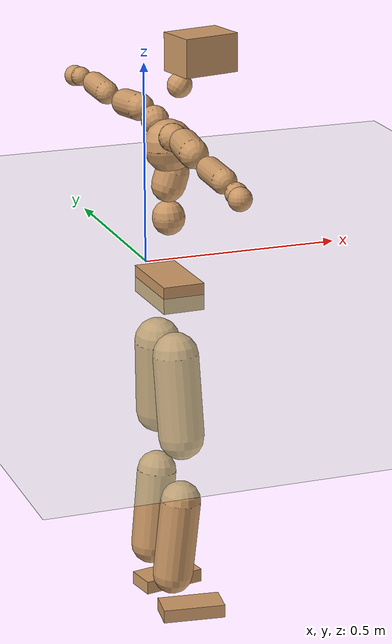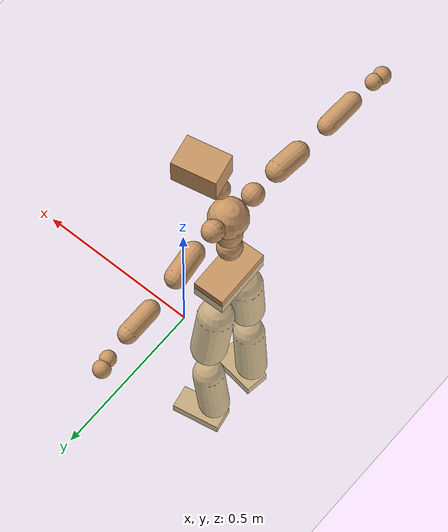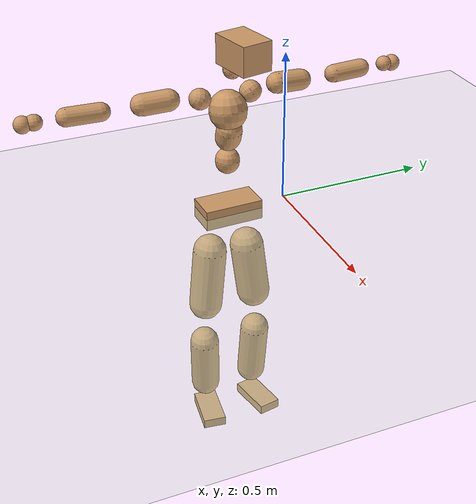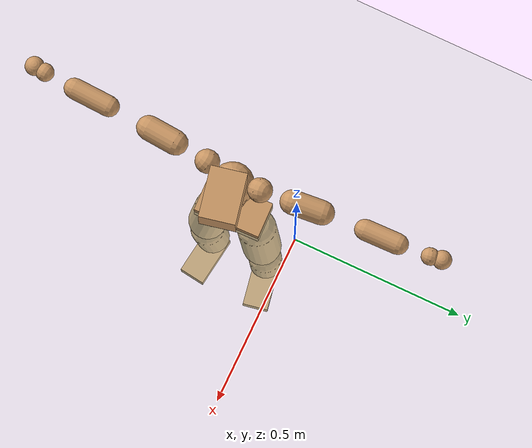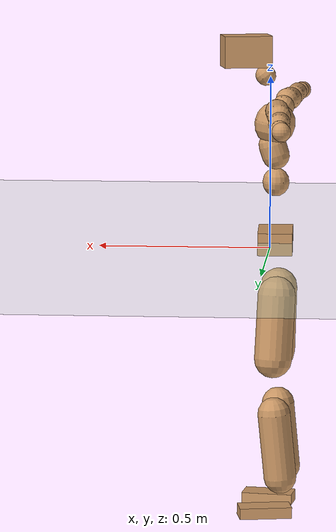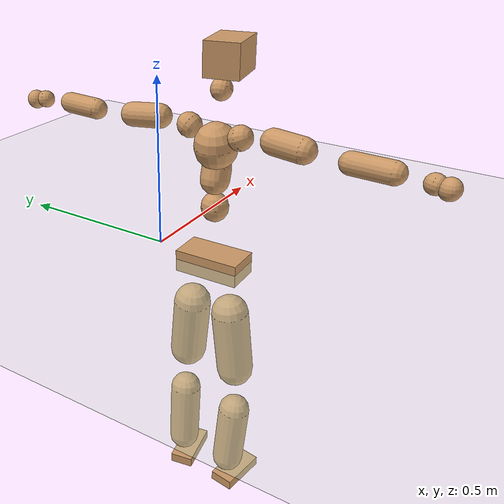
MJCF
<mujoco model="humanoid">
  <compiler coordinate="local" angle="radian"/>
  <default>
    <joint damping="0.0" armature="0.01" stiffness="0.0" limited="true"/>
    <geom conaffinity="1" condim="3" contype="7" margin="0.001" rgba="0.8 0.6 .4 1"/>
  </default>
  <asset>
    <texture type="skybox" builtin="gradient" rgb1=".4 .5 .6" rgb2="0 0 0" width="100" height="100"/>
    <texture builtin="flat" height="1278" mark="cross" markrgb="1 1 1" name="texgeom" random="0.01" rgb1="0.8 0.6 0.4" rgb2="0.8 0.6 0.4" type="cube" width="127"/>
    <texture builtin="checker" height="100" name="texplane" rgb1="0 0 0" rgb2="0.8 0.8 0.8" type="2d" width="100"/>
    <material name="MatPlane" reflectance="0.5" shininess="1" specular="1" texrepeat="60 60" texture="texplane"/>
    <material name="geom" texture="texgeom" texuniform="true"/>
  </asset>
  <worldbody>
    <light cutoff="100" diffuse="1 1 1" dir="-0 0 -1.3" directional="true" exponent="1" pos="0 0 1.3" specular=".1 .1 .1"/>
    <geom conaffinity="1" condim="3" name="floor" pos="0 0 0" rgba="0.8 0.9 0.8 1" size="100 100 .2" type="plane" material="MatPlane"/>
    <body name="Pelvis" pos="0.0003 -0.1916 0.0043">
      <freejoint name="Pelvis"/>
      <geom type="box" contype="1" conaffinity="1" density="5359.374825" pos="-0.0070 -0.0002 -0.0111" size="0.0513 0.0973 0.0329" quat="0.9999 0.0000 0.0000 0.0149" name="Pelvis"/>
      <body name="L_Hip" pos="-0.0185 0.0577 -0.0809">
        <joint name="L_Hip_x" type="hinge" pos="0 0 0" axis="1 0 0" stiffness="1600" damping="160" armature="0.02" range="-180.0000 180.0000"/>
        <joint name="L_Hip_y" type="hinge" pos="0 0 0" axis="0 1 0" stiffness="1600" damping="160" armature="0.02" range="-180.0000 180.0000"/>
        <joint name="L_Hip_z" type="hinge" pos="0 0 0" axis="0 0 1" stiffness="1600" damping="160" armature="0.02" range="-180.0000 180.0000"/>
        <geom type="capsule" contype="1" conaffinity="1" density="2040.816327" size="0.0562" fromto="0.0039 0.0096 -0.0856 0.0127 0.0310 -0.2751" name="L_Hip"/>
        <body name="L_Knee" pos="0.0166 0.0406 -0.3607">
          <joint name="L_Knee_x" type="hinge" pos="0 0 0" axis="1 0 0" stiffness="1600" damping="160" armature="0.02" range="-180.0000 180.0000"/>
          <joint name="L_Knee_y" type="hinge" pos="0 0 0" axis="0 1 0" stiffness="1600" damping="160" armature="0.02" range="-180.0000 180.0000"/>
          <joint name="L_Knee_z" type="hinge" pos="0 0 0" axis="0 0 1" stiffness="1600" damping="160" armature="0.02" range="-180.0000 180.0000"/>
          <geom type="capsule" contype="1" conaffinity="1" density="1234.567901" size="0.0488" fromto="-0.0077 -0.0021 -0.0784 -0.0269 -0.0072 -0.2736" name="L_Knee"/>
          <body name="L_Ankle" pos="-0.0346 -0.0093 -0.352">
            <joint name="L_Ankle_x" type="hinge" pos="0 0 0" axis="1 0 0" stiffness="1600" damping="160" armature="0.02" range="-180.0000 180.0000"/>
            <joint name="L_Ankle_y" type="hinge" pos="0 0 0" axis="0 1 0" stiffness="1600" damping="160" armature="0.02" range="-180.0000 180.0000"/>
            <joint name="L_Ankle_z" type="hinge" pos="0 0 0" axis="0 0 1" stiffness="1600" damping="160" armature="0.02" range="-180.0000 180.0000"/>
            <geom type="box" contype="1" conaffinity="1" density="1000.000028" pos="0.0539 0.0099 -0.0237" size="0.0781 0.0378 0.0165" quat="0.9959 0.0000 0.0000 0.0909" name="L_Ankle"/>
            <body name="L_Toe" pos="0.1079 0.0199 -0.0475">
              <joint name="L_Toe_x" type="hinge" pos="0 0 0" axis="1 0 0" stiffness="1000" damping="100" armature="0.02" range="-180.0000 180.0000"/>
              <joint name="L_Toe_y" type="hinge" pos="0 0 0" axis="0 1 0" stiffness="1000" damping="100" armature="0.02" range="-180.0000 180.0000"/>
              <joint name="L_Toe_z" type="hinge" pos="0 0 0" axis="0 0 1" stiffness="1000" damping="100" armature="0.02" range="-180.0000 180.0000"/>
              <geom type="box" contype="1" conaffinity="1" density="9360069.349628" pos="0.0000 0.0000 0.0263" size="0.0007 0.0019 0.001" quat="0.9952 0.0000 0.0000 0.0981" name="L_Toe"/>
            </body>
          </body>
        </body>
      </body>
      <body name="R_Hip" pos="-0.0173 -0.0556 -0.0768">
        <joint name="R_Hip_x" type="hinge" pos="0 0 0" axis="1 0 0" stiffness="1600" damping="160" armature="0.02" range="-180.0000 180.0000"/>
        <joint name="R_Hip_y" type="hinge" pos="0 0 0" axis="0 1 0" stiffness="1600" damping="160" armature="0.02" range="-180.0000 180.0000"/>
        <joint name="R_Hip_z" type="hinge" pos="0 0 0" axis="0 0 1" stiffness="1600" damping="160" armature="0.02" range="-180.0000 180.0000"/>
        <geom type="capsule" contype="1" conaffinity="1" density="2040.816327" size="0.0556" fromto="0.0026 -0.0091 -0.0851 0.0089 -0.0307 -0.2878" name="R_Hip"/>
        <body name="R_Knee" pos="0.0116 -0.0398 -0.3728">
          <joint name="R_Knee_x" type="hinge" pos="0 0 0" axis="1 0 0" stiffness="1600" damping="160" armature="0.02" range="-180.0000 180.0000"/>
          <joint name="R_Knee_y" type="hinge" pos="0 0 0" axis="0 1 0" stiffness="1600" damping="160" armature="0.02" range="-180.0000 180.0000"/>
          <joint name="R_Knee_z" type="hinge" pos="0 0 0" axis="0 0 1" stiffness="1600" damping="160" armature="0.02" range="-180.0000 180.0000"/>
          <geom type="capsule" contype="1" conaffinity="1" density="1234.567901" size="0.0493" fromto="-0.0077 0.0029 -0.0789 -0.0265 0.0101 -0.2723" name="R_Knee"/>
          <body name="R_Ankle" pos="-0.0342 0.013 -0.3512">
            <joint name="R_Ankle_x" type="hinge" pos="0 0 0" axis="1 0 0" stiffness="1600" damping="160" armature="0.02" range="-180.0000 180.0000"/>
            <joint name="R_Ankle_y" type="hinge" pos="0 0 0" axis="0 1 0" stiffness="1600" damping="160" armature="0.02" range="-180.0000 180.0000"/>
            <joint name="R_Ankle_z" type="hinge" pos="0 0 0" axis="0 0 1" stiffness="1600" damping="160" armature="0.02" range="-180.0000 180.0000"/>
            <geom type="box" contype="1" conaffinity="1" density="1000.00002" pos="0.0541 -0.0072 -0.0195" size="0.0767 0.0389 0.0164" quat="0.9978 0.0000 0.0000 -0.0660" name="R_Ankle"/>
            <body name="R_Toe" pos="0.1082 -0.0144 -0.0389">
              <joint name="R_Toe_x" type="hinge" pos="0 0 0" axis="1 0 0" stiffness="1000" damping="100" armature="0.02" range="-180.0000 180.0000"/>
              <joint name="R_Toe_y" type="hinge" pos="0 0 0" axis="0 1 0" stiffness="1000" damping="100" armature="0.02" range="-180.0000 180.0000"/>
              <joint name="R_Toe_z" type="hinge" pos="0 0 0" axis="0 0 1" stiffness="1000" damping="100" armature="0.02" range="-180.0000 180.0000"/>
              <geom type="box" contype="1" conaffinity="1" density="9620962.971029" pos="0.0000 0.0000 0.0223" size="0.0006 0.0019 0.001" quat="0.9984 0.0000 0.0000 -0.0559" name="R_Toe"/>
            </body>
          </body>
        </body>
      </body>
      <body name="Torso" pos="-0.0064 -0.0033 0.091">
        <joint name="Torso_x" type="hinge" pos="0 0 0" axis="1 0 0" stiffness="2000" damping="200" armature="0.02" range="-180.0000 180.0000"/>
        <joint name="Torso_y" type="hinge" pos="0 0 0" axis="0 1 0" stiffness="2000" damping="200" armature="0.02" range="-180.0000 180.0000"/>
        <joint name="Torso_z" type="hinge" pos="0 0 0" axis="0 0 1" stiffness="2000" damping="200" armature="0.02" range="-180.0000 180.0000"/>
        <geom type="capsule" contype="1" conaffinity="1" density="2040.816327" size="0.0392" fromto="-0.0014 0.0020 0.0692 -0.0016 0.0022 0.0754" name="Torso"/>
        <body name="Spine" pos="-0.003 0.0043 0.1446">
          <joint name="Spine_x" type="hinge" pos="0 0 0" axis="1 0 0" stiffness="2000" damping="200" armature="0.02" range="-180.0000 180.0000"/>
          <joint name="Spine_y" type="hinge" pos="0 0 0" axis="0 1 0" stiffness="2000" damping="200" armature="0.02" range="-180.0000 180.0000"/>
          <joint name="Spine_z" type="hinge" pos="0 0 0" axis="0 0 1" stiffness="2000" damping="200" armature="0.02" range="-180.0000 180.0000"/>
          <geom type="capsule" contype="1" conaffinity="1" density="2040.816327" size="0.0409" fromto="0.0126 0.0009 0.0389 0.0023 0.0002 0.0070" name="Spine"/>
          <body name="Chest" pos="0.0149 0.001 0.0459">
            <joint name="Chest_x" type="hinge" pos="0 0 0" axis="1 0 0" stiffness="2000" damping="200" armature="0.02" range="-180.0000 180.0000"/>
            <joint name="Chest_y" type="hinge" pos="0 0 0" axis="0 1 0" stiffness="2000" damping="200" armature="0.02" range="-180.0000 180.0000"/>
            <joint name="Chest_z" type="hinge" pos="0 0 0" axis="0 0 1" stiffness="2000" damping="200" armature="0.02" range="-180.0000 180.0000"/>
            <geom type="capsule" contype="1" conaffinity="1" density="2040.816327" size="0.0604" fromto="-0.0102 -0.0010 0.0596 -0.0090 -0.0009 0.0523" name="Chest"/>
            <body name="Neck" pos="-0.01 -0.0025 0.1637">
              <joint name="Neck_x" type="hinge" pos="0 0 0" axis="1 0 0" stiffness="1000" damping="100" armature="0.02" range="-180.0000 180.0000"/>
              <joint name="Neck_y" type="hinge" pos="0 0 0" axis="0 1 0" stiffness="1000" damping="100" armature="0.02" range="-180.0000 180.0000"/>
              <joint name="Neck_z" type="hinge" pos="0 0 0" axis="0 0 1" stiffness="1000" damping="100" armature="0.02" range="-180.0000 180.0000"/>
              <geom type="capsule" contype="1" conaffinity="1" density="1000" size="0.0296" fromto="0.0275 0.0051 0.0349 0.0287 0.0053 0.0364" name="Neck"/>
              <body name="Head" pos="0.0562 0.0104 0.0713">
                <joint name="Head_x" type="hinge" pos="0 0 0" axis="1 0 0" stiffness="1000" damping="100" armature="0.02" range="-180.0000 180.0000"/>
                <joint name="Head_y" type="hinge" pos="0 0 0" axis="0 1 0" stiffness="1000" damping="100" armature="0.02" range="-180.0000 180.0000"/>
                <joint name="Head_z" type="hinge" pos="0 0 0" axis="0 0 1" stiffness="1000" damping="100" armature="0.02" range="-180.0000 180.0000"/>
                <geom type="box" contype="1" conaffinity="1" density="2250.000197" pos="0.0291 0.0062 0.0367" size="0.0706 0.0499 0.0463" quat="0.9945 0.0000 0.0000 0.1050" name="Head"/>
              </body>
            </body>
            <body name="L_Thorax" pos="-0.0197 0.048 0.0873">
              <joint name="L_Thorax_x" type="hinge" pos="0 0 0" axis="1 0 0" stiffness="1000" damping="100" armature="0.02" range="-180.0000 180.0000"/>
              <joint name="L_Thorax_y" type="hinge" pos="0 0 0" axis="0 1 0" stiffness="1000" damping="100" armature="0.02" range="-180.0000 180.0000"/>
              <joint name="L_Thorax_z" type="hinge" pos="0 0 0" axis="0 0 1" stiffness="1000" damping="100" armature="0.02" range="-180.0000 180.0000"/>
              <geom type="capsule" contype="1" conaffinity="1" density="1000" size="0.0338" fromto="0.0015 0.0300 0.0154 0.0014 0.0279 0.0143" name="L_Thorax"/>
              <body name="L_Shoulder" pos="0.0029 0.0579 0.0297">
                <joint name="L_Shoulder_x" type="hinge" pos="0 0 0" axis="1 0 0" stiffness="1000" damping="100" armature="0.02" range="-720.0000 720.0000"/>
                <joint name="L_Shoulder_y" type="hinge" pos="0 0 0" axis="0 1 0" stiffness="1000" damping="100" armature="0.02" range="-720.0000 720.0000"/>
                <joint name="L_Shoulder_z" type="hinge" pos="0 0 0" axis="0 0 1" stiffness="1000" damping="100" armature="0.02" range="-720.0000 720.0000"/>
                <geom type="capsule" contype="1" conaffinity="1" density="1000" size="0.0336" fromto="-0.0068 0.0630 -0.0051 -0.0159 0.1480 -0.0120" name="L_Shoulder"/>
                <body name="L_Elbow" pos="-0.0227 0.211 -0.0171">
                  <joint name="L_Elbow_x" type="hinge" pos="0 0 0" axis="1 0 0" stiffness="1000" damping="100" armature="0.02" range="-720.0000 720.0000"/>
                  <joint name="L_Elbow_y" type="hinge" pos="0 0 0" axis="0 1 0" stiffness="1000" damping="100" armature="0.02" range="-720.0000 720.0000"/>
                  <joint name="L_Elbow_z" type="hinge" pos="0 0 0" axis="0 0 1" stiffness="1000" damping="100" armature="0.02" range="-720.0000 720.0000"/>
                  <geom type="capsule" contype="1" conaffinity="1" density="1000" size="0.0289" fromto="-0.0009 0.0589 0.0021 -0.0025 0.1550 0.0054" name="L_Elbow"/>
                  <body name="L_Wrist" pos="-0.0034 0.2139 0.0075">
                    <joint name="L_Wrist_x" type="hinge" pos="0 0 0" axis="1 0 0" stiffness="600" damping="60" armature="0.02" range="-180.0000 180.0000"/>
                    <joint name="L_Wrist_y" type="hinge" pos="0 0 0" axis="0 1 0" stiffness="600" damping="60" armature="0.02" range="-180.0000 180.0000"/>
                    <joint name="L_Wrist_z" type="hinge" pos="0 0 0" axis="0 0 1" stiffness="600" damping="60" armature="0.02" range="-180.0000 180.0000"/>
                    <geom type="capsule" contype="1" conaffinity="1" density="1000" size="0.0242" fromto="-0.0056 0.0316 -0.0041 -0.0060 0.0335 -0.0044" name="L_Wrist"/>
                    <body name="L_Hand" pos="-0.0116 0.0651 -0.0085">
                      <joint name="L_Hand_x" type="hinge" pos="0 0 0" axis="1 0 0" stiffness="600" damping="60" armature="0.02" range="-180.0000 180.0000"/>
                      <joint name="L_Hand_y" type="hinge" pos="0 0 0" axis="0 1 0" stiffness="600" damping="60" armature="0.02" range="-180.0000 180.0000"/>
                      <joint name="L_Hand_z" type="hinge" pos="0 0 0" axis="0 0 1" stiffness="600" damping="60" armature="0.02" range="-180.0000 180.0000"/>
                      <geom type="sphere" contype="1" conaffinity="1" density="1000" size="0.0264" pos="0.0000 0.0000 0.0000" name="L_Hand"/>
                    </body>
                  </body>
                </body>
              </body>
            </body>
            <body name="R_Thorax" pos="-0.028 -0.051 0.0845">
              <joint name="R_Thorax_x" type="hinge" pos="0 0 0" axis="1 0 0" stiffness="1000" damping="100" armature="0.02" range="-180.0000 180.0000"/>
              <joint name="R_Thorax_y" type="hinge" pos="0 0 0" axis="0 1 0" stiffness="1000" damping="100" armature="0.02" range="-180.0000 180.0000"/>
              <joint name="R_Thorax_z" type="hinge" pos="0 0 0" axis="0 0 1" stiffness="1000" damping="100" armature="0.02" range="-180.0000 180.0000"/>
              <geom type="capsule" contype="1" conaffinity="1" density="1000" size="0.0334" fromto="-0.0019 -0.0325 0.0137 -0.0020 -0.0344 0.0145" name="R_Thorax"/>
              <body name="R_Shoulder" pos="-0.0039 -0.0669 0.0283">
                <joint name="R_Shoulder_x" type="hinge" pos="0 0 0" axis="1 0 0" stiffness="1000" damping="100" armature="0.02" range="-720.0000 720.0000"/>
                <joint name="R_Shoulder_y" type="hinge" pos="0 0 0" axis="0 1 0" stiffness="1000" damping="100" armature="0.02" range="-720.0000 720.0000"/>
                <joint name="R_Shoulder_z" type="hinge" pos="0 0 0" axis="0 0 1" stiffness="1000" damping="100" armature="0.02" range="-720.0000 720.0000"/>
                <geom type="capsule" contype="1" conaffinity="1" density="1000" size="0.034" fromto="-0.0055 -0.0637 -0.0032 -0.0126 -0.1472 -0.0073" name="R_Shoulder"/>
                <body name="R_Elbow" pos="-0.0181 -0.2109 -0.0105">
                  <joint name="R_Elbow_x" type="hinge" pos="0 0 0" axis="1 0 0" stiffness="1000" damping="100" armature="0.02" range="-720.0000 720.0000"/>
                  <joint name="R_Elbow_y" type="hinge" pos="0 0 0" axis="0 1 0" stiffness="1000" damping="100" armature="0.02" range="-720.0000 720.0000"/>
                  <joint name="R_Elbow_z" type="hinge" pos="0 0 0" axis="0 0 1" stiffness="1000" damping="100" armature="0.02" range="-720.0000 720.0000"/>
                  <geom type="capsule" contype="1" conaffinity="1" density="1000" size="0.0288" fromto="-0.0026 -0.0588 0.0001 -0.0073 -0.1643 0.0002" name="R_Elbow"/>
                  <body name="R_Wrist" pos="-0.01 -0.223 0.0002">
                    <joint name="R_Wrist_x" type="hinge" pos="0 0 0" axis="1 0 0" stiffness="600" damping="60" armature="0.02" range="-180.0000 180.0000"/>
                    <joint name="R_Wrist_y" type="hinge" pos="0 0 0" axis="0 1 0" stiffness="600" damping="60" armature="0.02" range="-180.0000 180.0000"/>
                    <joint name="R_Wrist_z" type="hinge" pos="0 0 0" axis="0 0 1" stiffness="600" damping="60" armature="0.02" range="-180.0000 180.0000"/>
                    <geom type="capsule" contype="1" conaffinity="1" density="1000" size="0.025" fromto="-0.0040 -0.0320 -0.0028 -0.0043 -0.0340 -0.0030" name="R_Wrist"/>
                    <body name="R_Hand" pos="-0.0083 -0.066 -0.0058">
                      <joint name="R_Hand_x" type="hinge" pos="0 0 0" axis="1 0 0" stiffness="600" damping="60" armature="0.02" range="-180.0000 180.0000"/>
                      <joint name="R_Hand_y" type="hinge" pos="0 0 0" axis="0 1 0" stiffness="600" damping="60" armature="0.02" range="-180.0000 180.0000"/>
                      <joint name="R_Hand_z" type="hinge" pos="0 0 0" axis="0 0 1" stiffness="600" damping="60" armature="0.02" range="-180.0000 180.0000"/>
                      <geom type="sphere" contype="1" conaffinity="1" density="1000" size="0.0266" pos="0.0000 0.0000 0.0000" name="R_Hand"/>
                    </body>
                  </body>
                </body>
              </body>
            </body>
          </body>
        </body>
      </body>
    </body>
  </worldbody>
  <actuator>
    <motor name="L_Hip_x" joint="L_Hip_x" gear="500"/>
    <motor name="L_Hip_y" joint="L_Hip_y" gear="500"/>
    <motor name="L_Hip_z" joint="L_Hip_z" gear="500"/>
    <motor name="L_Knee_x" joint="L_Knee_x" gear="500"/>
    <motor name="L_Knee_y" joint="L_Knee_y" gear="500"/>
    <motor name="L_Knee_z" joint="L_Knee_z" gear="500"/>
    <motor name="L_Ankle_x" joint="L_Ankle_x" gear="500"/>
    <motor name="L_Ankle_y" joint="L_Ankle_y" gear="500"/>
    <motor name="L_Ankle_z" joint="L_Ankle_z" gear="500"/>
    <motor name="L_Toe_x" joint="L_Toe_x" gear="500"/>
    <motor name="L_Toe_y" joint="L_Toe_y" gear="500"/>
    <motor name="L_Toe_z" joint="L_Toe_z" gear="500"/>
    <motor name="R_Hip_x" joint="R_Hip_x" gear="500"/>
    <motor name="R_Hip_y" joint="R_Hip_y" gear="500"/>
    <motor name="R_Hip_z" joint="R_Hip_z" gear="500"/>
    <motor name="R_Knee_x" joint="R_Knee_x" gear="500"/>
    <motor name="R_Knee_y" joint="R_Knee_y" gear="500"/>
    <motor name="R_Knee_z" joint="R_Knee_z" gear="500"/>
    <motor name="R_Ankle_x" joint="R_Ankle_x" gear="500"/>
    <motor name="R_Ankle_y" joint="R_Ankle_y" gear="500"/>
    <motor name="R_Ankle_z" joint="R_Ankle_z" gear="500"/>
    <motor name="R_Toe_x" joint="R_Toe_x" gear="500"/>
    <motor name="R_Toe_y" joint="R_Toe_y" gear="500"/>
    <motor name="R_Toe_z" joint="R_Toe_z" gear="500"/>
    <motor name="Torso_x" joint="Torso_x" gear="500"/>
    <motor name="Torso_y" joint="Torso_y" gear="500"/>
    <motor name="Torso_z" joint="Torso_z" gear="500"/>
    <motor name="Spine_x" joint="Spine_x" gear="500"/>
    <motor name="Spine_y" joint="Spine_y" gear="500"/>
    <motor name="Spine_z" joint="Spine_z" gear="500"/>
    <motor name="Chest_x" joint="Chest_x" gear="500"/>
    <motor name="Chest_y" joint="Chest_y" gear="500"/>
    <motor name="Chest_z" joint="Chest_z" gear="500"/>
    <motor name="Neck_x" joint="Neck_x" gear="500"/>
    <motor name="Neck_y" joint="Neck_y" gear="500"/>
    <motor name="Neck_z" joint="Neck_z" gear="500"/>
    <motor name="Head_x" joint="Head_x" gear="500"/>
    <motor name="Head_y" joint="Head_y" gear="500"/>
    <motor name="Head_z" joint="Head_z" gear="500"/>
    <motor name="L_Thorax_x" joint="L_Thorax_x" gear="500"/>
    <motor name="L_Thorax_y" joint="L_Thorax_y" gear="500"/>
    <motor name="L_Thorax_z" joint="L_Thorax_z" gear="500"/>
    <motor name="L_Shoulder_x" joint="L_Shoulder_x" gear="500"/>
    <motor name="L_Shoulder_y" joint="L_Shoulder_y" gear="500"/>
    <motor name="L_Shoulder_z" joint="L_Shoulder_z" gear="500"/>
    <motor name="L_Elbow_x" joint="L_Elbow_x" gear="500"/>
    <motor name="L_Elbow_y" joint="L_Elbow_y" gear="500"/>
    <motor name="L_Elbow_z" joint="L_Elbow_z" gear="500"/>
    <motor name="L_Wrist_x" joint="L_Wrist_x" gear="500"/>
    <motor name="L_Wrist_y" joint="L_Wrist_y" gear="500"/>
    <motor name="L_Wrist_z" joint="L_Wrist_z" gear="500"/>
    <motor name="L_Hand_x" joint="L_Hand_x" gear="500"/>
    <motor name="L_Hand_y" joint="L_Hand_y" gear="500"/>
    <motor name="L_Hand_z" joint="L_Hand_z" gear="500"/>
    <motor name="R_Thorax_x" joint="R_Thorax_x" gear="500"/>
    <motor name="R_Thorax_y" joint="R_Thorax_y" gear="500"/>
    <motor name="R_Thorax_z" joint="R_Thorax_z" gear="500"/>
    <motor name="R_Shoulder_x" joint="R_Shoulder_x" gear="500"/>
    <motor name="R_Shoulder_y" joint="R_Shoulder_y" gear="500"/>
    <motor name="R_Shoulder_z" joint="R_Shoulder_z" gear="500"/>
    <motor name="R_Elbow_x" joint="R_Elbow_x" gear="500"/>
    <motor name="R_Elbow_y" joint="R_Elbow_y" gear="500"/>
    <motor name="R_Elbow_z" joint="R_Elbow_z" gear="500"/>
    <motor name="R_Wrist_x" joint="R_Wrist_x" gear="500"/>
    <motor name="R_Wrist_y" joint="R_Wrist_y" gear="500"/>
    <motor name="R_Wrist_z" joint="R_Wrist_z" gear="500"/>
    <motor name="R_Hand_x" joint="R_Hand_x" gear="500"/>
    <motor name="R_Hand_y" joint="R_Hand_y" gear="500"/>
    <motor name="R_Hand_z" joint="R_Hand_z" gear="500"/>
  </actuator>
  <contact>
    <exclude body1="Torso" body2="Chest"/>
    <exclude body1="Head" body2="Chest"/>
    <exclude body1="R_Knee" body2="R_Toe"/>
    <exclude body1="R_Knee" body2="L_Ankle"/>
    <exclude body1="R_Knee" body2="L_Toe"/>
    <exclude body1="L_Knee" body2="L_Toe"/>
    <exclude body1="L_Knee" body2="R_Ankle"/>
    <exclude body1="L_Knee" body2="R_Toe"/>
    <exclude body1="L_Shoulder" body2="Chest"/>
    <exclude body1="R_Shoulder" body2="Chest"/>
  </contact>
  <sensor/>
  <size njmax="700" nconmax="700"/>
</mujoco>
